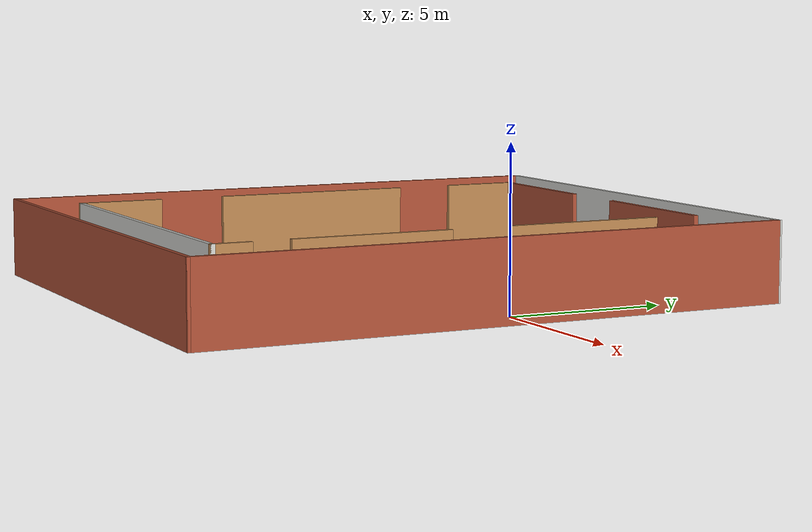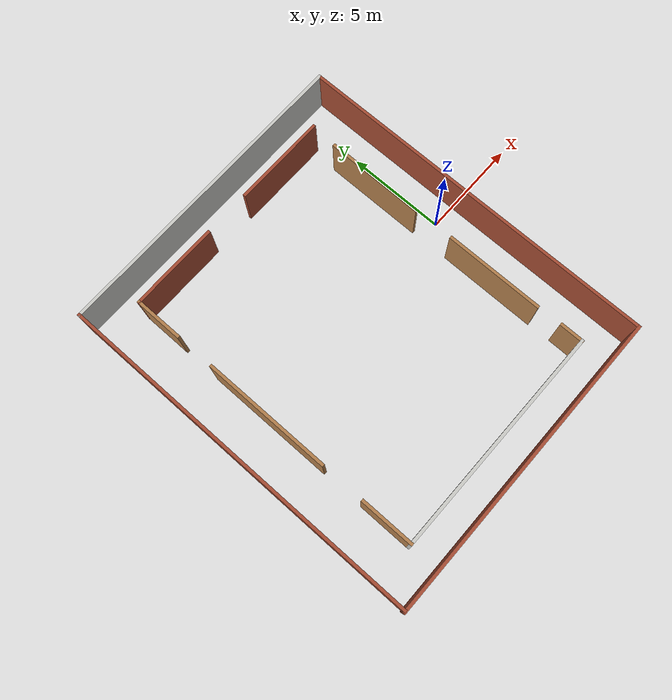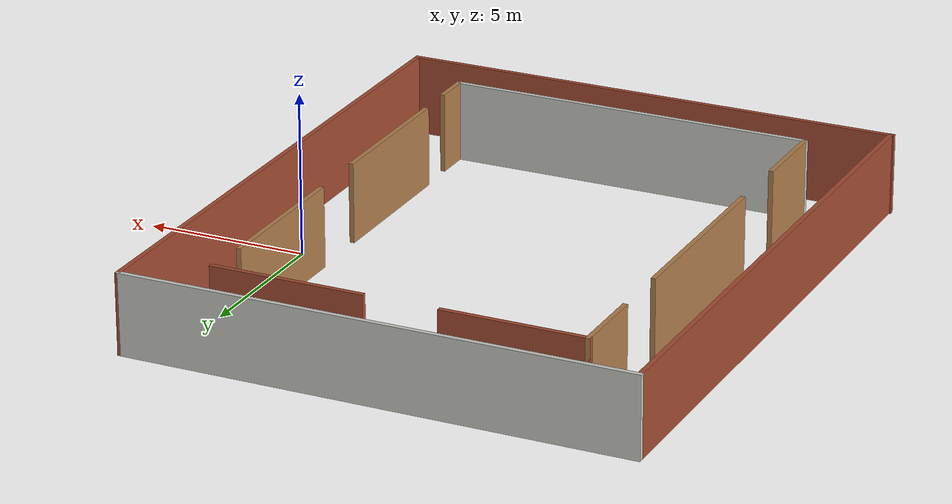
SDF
<?xml version='1.0'?>
<sdf version='1.6'>
  <model name='open_hall3'>
    <pose frame=''>-6.57156 -0.923455 0 0 -0 0</pose>
    <link name='Wall_11'>
      <collision name='Wall_11_Collision'>
        <geometry>
          <box>
            <size>4.75 0.15 2.5</size>
          </box>
        </geometry>
        <pose frame=''>0 0 1.25 0 -0 0</pose>
      </collision>
      <visual name='Wall_11_Visual'>
        <pose frame=''>0 0 1.25 0 -0 0</pose>
        <geometry>
          <box>
            <size>4.75 0.15 2.5</size>
          </box>
        </geometry>
        <material>
          <script>
            <uri>file://media/materials/scripts/gazebo.material</uri>
            <name>Gazebo/Bricks</name>
          </script>
          <ambient>1 1 1 1</ambient>
        </material>
        <meta>
          <layer>0</layer>
        </meta>
      </visual>
      <pose frame=''>3.40186 7.79691 0 0 -0 3.14159</pose>
    </link>
    <link name='Wall_13'>
      <collision name='Wall_13_Collision'>
        <geometry>
          <box>
            <size>2.75 0.15 2.5</size>
          </box>
        </geometry>
        <pose frame=''>0 0 1.25 0 -0 0</pose>
      </collision>
      <visual name='Wall_13_Visual'>
        <pose frame=''>0 0 1.25 0 -0 0</pose>
        <geometry>
          <box>
            <size>2.75 0.15 2.5</size>
          </box>
        </geometry>
        <material>
          <script>
            <uri>file://media/materials/scripts/gazebo.material</uri>
            <name>Gazebo/Wood</name>
          </script>
          <ambient>1 1 1 1</ambient>
        </material>
        <meta>
          <layer>0</layer>
        </meta>
      </visual>
      <pose frame=''>-5.64814 -6.50309 0 0 -0 1.5708</pose>
    </link>
    <link name='Wall_15'>
      <collision name='Wall_15_Collision'>
        <geometry>
          <box>
            <size>6.5 0.15 2.5</size>
          </box>
        </geometry>
        <pose frame=''>0 0 1.25 0 -0 0</pose>
      </collision>
      <visual name='Wall_15_Visual'>
        <pose frame=''>0 0 1.25 0 -0 0</pose>
        <geometry>
          <box>
            <size>6.5 0.15 2.5</size>
          </box>
        </geometry>
        <material>
          <script>
            <uri>file://media/materials/scripts/gazebo.material</uri>
            <name>Gazebo/Wood</name>
          </script>
          <ambient>1 1 1 1</ambient>
        </material>
        <meta>
          <layer>0</layer>
        </meta>
      </visual>
      <pose frame=''>-5.64814 0.23954 0 0 -0 1.5708</pose>
    </link>
    <link name='Wall_17'>
      <collision name='Wall_17_Collision'>
        <geometry>
          <box>
            <size>2.5 0.15 2.5</size>
          </box>
        </geometry>
        <pose frame=''>0 0 1.25 0 -0 0</pose>
      </collision>
      <visual name='Wall_17_Visual'>
        <pose frame=''>0 0 1.25 0 -0 0</pose>
        <geometry>
          <box>
            <size>2.5 0.15 2.5</size>
          </box>
        </geometry>
        <material>
          <script>
            <uri>file://media/materials/scripts/gazebo.material</uri>
            <name>Gazebo/Wood</name>
          </script>
          <ambient>1 1 1 1</ambient>
        </material>
        <meta>
          <layer>0</layer>
        </meta>
      </visual>
      <pose frame=''>-5.64814 6.62191 0 0 -0 -1.5708</pose>
    </link>
    <link name='Wall_19'>
      <collision name='Wall_19_Collision'>
        <geometry>
          <box>
            <size>1.25 0.15 2.5</size>
          </box>
        </geometry>
        <pose frame=''>0 0 1.25 0 -0 0</pose>
      </collision>
      <visual name='Wall_19_Visual'>
        <pose frame=''>0 0 1.25 0 -0 0</pose>
        <geometry>
          <box>
            <size>1.25 0.15 2.5</size>
          </box>
        </geometry>
        <material>
          <script>
            <uri>file://media/materials/scripts/gazebo.material</uri>
            <name>Gazebo/Wood</name>
          </script>
          <ambient>1 1 1 1</ambient>
        </material>
        <meta>
          <layer>0</layer>
        </meta>
      </visual>
      <pose frame=''>5.70186 -7.25309 0 0 -0 1.5708</pose>
    </link>
    <link name='Wall_22'>
      <collision name='Wall_22_Collision'>
        <geometry>
          <box>
            <size>5 0.15 2.5</size>
          </box>
        </geometry>
        <pose frame=''>0 0 1.25 0 -0 0</pose>
      </collision>
      <visual name='Wall_22_Visual'>
        <pose frame=''>0 0 1.25 0 -0 0</pose>
        <geometry>
          <box>
            <size>5 0.15 2.5</size>
          </box>
        </geometry>
        <material>
          <script>
            <uri>file://media/materials/scripts/gazebo.material</uri>
            <name>Gazebo/Wood</name>
          </script>
          <ambient>1 1 1 1</ambient>
        </material>
        <meta>
          <layer>0</layer>
        </meta>
      </visual>
      <pose frame=''>5.65717 -2.95885 0 0 -0 1.5708</pose>
    </link>
    <link name='Wall_24'>
      <collision name='Wall_24_Collision'>
        <geometry>
          <box>
            <size>5 0.15 2.5</size>
          </box>
        </geometry>
        <pose frame=''>0 0 1.25 0 -0 0</pose>
      </collision>
      <visual name='Wall_24_Visual'>
        <pose frame=''>0 0 1.25 0 -0 0</pose>
        <geometry>
          <box>
            <size>5 0.15 2.5</size>
          </box>
        </geometry>
        <material>
          <script>
            <uri>file://media/materials/scripts/gazebo.material</uri>
            <name>Gazebo/Wood</name>
          </script>
          <ambient>1 1 1 1</ambient>
        </material>
        <meta>
          <layer>0</layer>
        </meta>
      </visual>
      <pose frame=''>5.61065 3.97322 0 0 -0 1.5708</pose>
    </link>
    <link name='Wall_26'>
      <collision name='Wall_26_Collision'>
        <geometry>
          <box>
            <size>18.75 0.15 2.5</size>
          </box>
        </geometry>
        <pose frame=''>0 0 1.25 0 -0 0</pose>
      </collision>
      <visual name='Wall_26_Visual'>
        <pose frame=''>0 0 1.25 0 -0 0</pose>
        <geometry>
          <box>
            <size>18.75 0.15 2.5</size>
          </box>
        </geometry>
        <material>
          <script>
            <uri>file://media/materials/scripts/gazebo.material</uri>
            <name>Gazebo/Bricks</name>
          </script>
          <ambient>1 1 1 1</ambient>
        </material>
        <meta>
          <layer>0</layer>
        </meta>
      </visual>
      <pose frame=''>-7.78824 0.023327 0 0 -0 -1.5708</pose>
    </link>
    <link name='Wall_28'>
      <collision name='Wall_28_Collision'>
        <geometry>
          <box>
            <size>15.8196 0.15 2.5</size>
          </box>
        </geometry>
        <pose frame=''>0 0 1.25 0 -0 0</pose>
      </collision>
      <visual name='Wall_28_Visual'>
        <pose frame=''>0 0 1.25 0 -0 0</pose>
        <geometry>
          <box>
            <size>15.8196 0.15 2.5</size>
          </box>
        </geometry>
        <material>
          <script>
            <uri>file://media/materials/scripts/gazebo.material</uri>
            <name>Gazebo/Bricks</name>
          </script>
          <ambient>1 1 1 1</ambient>
        </material>
        <meta>
          <layer>0</layer>
        </meta>
      </visual>
      <pose frame=''>0 -9.29993 0 0 -0 0.002969</pose>
    </link>
    <link name='Wall_29'>
      <collision name='Wall_29_Collision'>
        <geometry>
          <box>
            <size>18.75 0.15 2.5</size>
          </box>
        </geometry>
        <pose frame=''>0 0 1.25 0 -0 0</pose>
      </collision>
      <visual name='Wall_29_Visual'>
        <pose frame=''>0 0 1.25 0 -0 0</pose>
        <geometry>
          <box>
            <size>18.75 0.15 2.5</size>
          </box>
        </geometry>
        <material>
          <script>
            <uri>file://media/materials/scripts/gazebo.material</uri>
            <name>Gazebo/Bricks</name>
          </script>
          <ambient>1 1 1 1</ambient>
        </material>
        <meta>
          <layer>0</layer>
        </meta>
      </visual>
      <pose frame=''>7.82326 0.023327 0 0 -0 1.57203</pose>
    </link>
    <link name='Wall_3'>
      <collision name='Wall_3_Collision'>
        <geometry>
          <box>
            <size>11.5 0.15 2.5</size>
          </box>
        </geometry>
        <pose frame=''>0 0 1.25 0 -0 0</pose>
      </collision>
      <visual name='Wall_3_Visual'>
        <pose frame=''>0 0 1.25 0 -0 0</pose>
        <geometry>
          <box>
            <size>11.5 0.15 2.5</size>
          </box>
        </geometry>
        <material>
          <script>
            <uri>file://media/materials/scripts/gazebo.material</uri>
            <name>Gazebo/CeilingTiled</name>
          </script>
          <ambient>1 1 1 1</ambient>
        </material>
        <meta>
          <layer>0</layer>
        </meta>
      </visual>
      <pose frame=''>0.026863 -7.80309 0 0 -0 0</pose>
    </link>
    <link name='Wall_30'>
      <collision name='Wall_30_Collision'>
        <geometry>
          <box>
            <size>15.75 0.15 2.5</size>
          </box>
        </geometry>
        <pose frame=''>0 0 1.25 0 -0 0</pose>
      </collision>
      <visual name='Wall_30_Visual'>
        <pose frame=''>0 0 1.25 0 -0 0</pose>
        <geometry>
          <box>
            <size>15.75 0.15 2.5</size>
          </box>
        </geometry>
        <material>
          <script>
            <uri>file://media/materials/scripts/gazebo.material</uri>
            <name>Gazebo/CeilingTiled</name>
          </script>
          <ambient>1 1 1 1</ambient>
        </material>
        <meta>
          <layer>0</layer>
        </meta>
      </visual>
      <pose frame=''>0.011763 9.32333 0 0 -0 3.14159</pose>
    </link>
    <link name='Wall_9'>
      <collision name='Wall_9_Collision'>
        <geometry>
          <box>
            <size>4.5 0.15 2.5</size>
          </box>
        </geometry>
        <pose frame=''>0 0 1.25 0 -0 0</pose>
      </collision>
      <visual name='Wall_9_Visual'>
        <pose frame=''>0 0 1.25 0 -0 0</pose>
        <geometry>
          <box>
            <size>4.5 0.15 2.5</size>
          </box>
        </geometry>
        <material>
          <script>
            <uri>file://media/materials/scripts/gazebo.material</uri>
            <name>Gazebo/Bricks</name>
          </script>
          <ambient>1 1 1 1</ambient>
        </material>
        <meta>
          <layer>0</layer>
        </meta>
      </visual>
      <pose frame=''>-3.47314 7.79691 0 0 -0 0</pose>
    </link>
    <static>1</static>
  </model>
</sdf>
